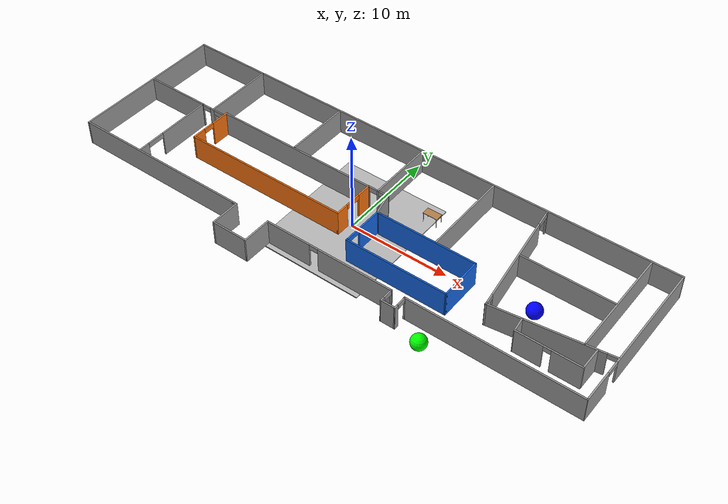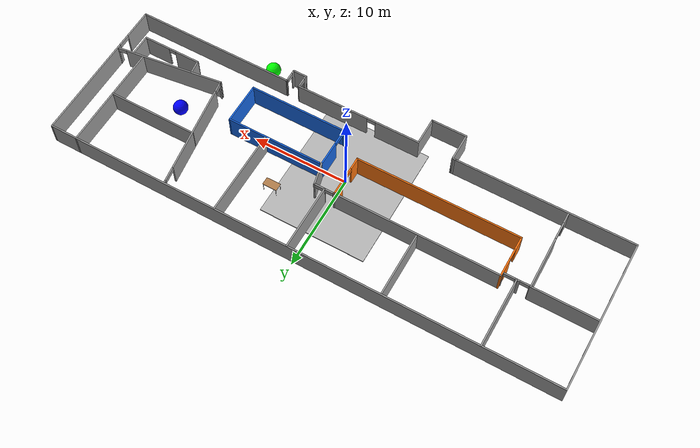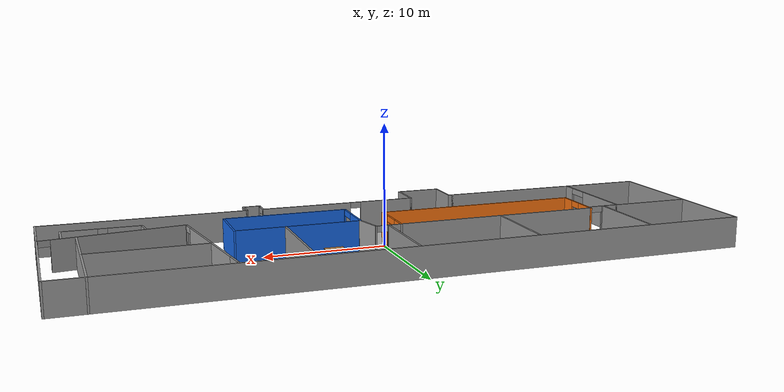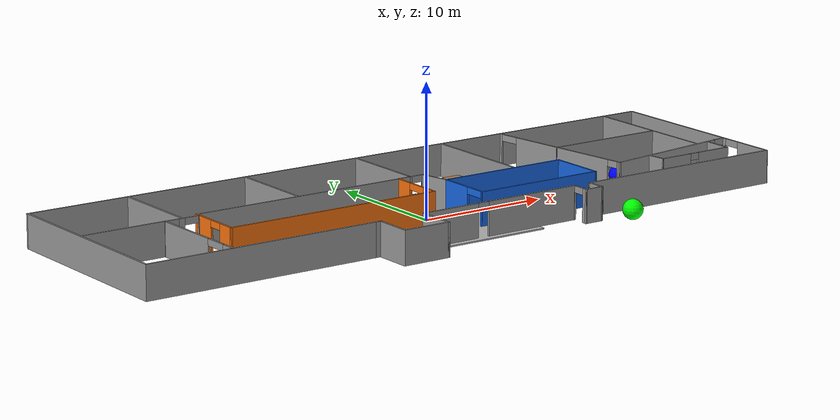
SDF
<sdf version="1.4">
 <world name="default">
  <scene><ambient>0.8 0.8 0.8 1</ambient><background>0.7 0.7 0.7 1</background><shadows>true</shadows></scene>
  <include><uri>model://sun</uri><pose>-2.0 2.0 2.0 0 0 0</pose></include>
  <include><uri>model://quarto_andar/pisosala</uri></include>
  <include>
   <uri>model://quarto_andar/esferas/bola_verde</uri>
   <pose>12.598763 -7.618453 0.500000 0 -0 0</pose>
  </include>
  <include>
   <uri>model://quarto_andar/esferas/bola_azul</uri>
   <pose>18.141525 0.793486 0.500000 0 -0 0</pose>
  </include>
  <include><uri>model://quarto_andar/mesa</uri><pose>5.5 4.3 0.4 0 0 0</pose></include>
  <include><uri>model://quarto_andar</uri></include>
  <physics type="ode">
   <real_time_update_rate>1000.0</real_time_update_rate>
   <max_step_size>0.001</max_step_size>
   <real_time_factor>1</real_time_factor>
   <ode>
    <solver>
     <type>quick</type>
     <iters>150</iters>
     <precon_iters>0</precon_iters>
     <sor>1.400000</sor>
     <use_dynamic_moi_rescaling>1</use_dynamic_moi_rescaling>
    </solver>
    <constraints>
     <cfm>0.00001</cfm>
     <erp>0.2</erp>
     <contact_max_correcting_vel>2000.000000</contact_max_correcting_vel>
     <contact_surface_layer>0.01000</contact_surface_layer>
    </constraints>
   </ode>
  </physics>
 </world>
</sdf>

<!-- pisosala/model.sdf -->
<sdf version="1.6">
  <model name="pisosala_forca">
    <static>true</static>
    <link name="course_link">
      <collision name="course_collision">
        <geometry>
          <plane>
            <normal>0 0 1</normal>
            <size>10 13</size>
          </plane>
        </geometry>
        <surface>
          <friction>
            <ode>
              <mu>100</mu>
              <mu2>50</mu2>
            </ode>
          </friction>
        </surface>
      </collision>
      <visual name="course_visual">
        <cast_shadows>false</cast_shadows>
        <geometry>
          <mesh>
            <uri>model://forca/pisosala/materials/scripts/piso.dae</uri>
            <scale>1 1 1</scale>
          </mesh>
        </geometry>
      </visual>
    </link>
  </model>
</sdf>

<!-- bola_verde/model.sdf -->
<sdf version='1.6'>
  <model name='bola_azul'>
    <link name='link'>
      <inertial>
        <mass>1</mass>
        <inertia>
          <ixx>0.1</ixx>
          <ixy>0</ixy>
          <ixz>0</ixz>
          <iyy>0.1</iyy>
          <iyz>0</iyz>
          <izz>0.1</izz>
        </inertia>
        <pose frame=''>0 0 0 0 -0 0</pose>
      </inertial>
      <self_collide>0</self_collide>
      <enable_wind>0</enable_wind>
      <kinematic>0</kinematic>
      <pose frame=''>0 0 0 0 -0 0</pose>
      <gravity>1</gravity>
      <visual name='visual'>
        <geometry>
          <sphere>
            <radius>0.75</radius>
          </sphere>
        </geometry>
        <material>
          <script>
            <name>Gazebo/Grey</name>
            <uri>file://media/materials/scripts/gazebo.material</uri>
          </script>
          <shader type='vertex'>
            <normal_map>__default__</normal_map>
          </shader>
          <ambient>0 1 0 1</ambient>
          <diffuse>0 1 0 1</diffuse>
          <specular>0 1 0 1</specular>
          <emissive>0 0 0 1</emissive>
        </material>
        <pose frame=''>0 0 0 0 -0 0</pose>
        <transparency>0</transparency>
        <cast_shadows>1</cast_shadows>
      </visual>
      <collision name='collision'>
        <laser_retro>0</laser_retro>
        <max_contacts>10</max_contacts>
        <pose frame=''>0 0 0 0 -0 0</pose>
        <geometry>
          <sphere>
            <radius>0.75</radius>
          </sphere>
        </geometry>
        <surface>
          <friction>
            <ode>
              <mu>1</mu>
              <mu2>1</mu2>
              <fdir1>0 0 0</fdir1>
              <slip1>0</slip1>
              <slip2>0</slip2>
            </ode>
            <torsional>
              <coefficient>1</coefficient>
              <patch_radius>0</patch_radius>
              <surface_radius>0</surface_radius>
              <use_patch_radius>1</use_patch_radius>
              <ode>
                <slip>0</slip>
              </ode>
            </torsional>
          </friction>
          <bounce>
            <restitution_coefficient>0</restitution_coefficient>
            <threshold>1e+06</threshold>
          </bounce>
          <contact>
            <collide_without_contact>0</collide_without_contact>
            <collide_without_contact_bitmask>1</collide_without_contact_bitmask>
            <collide_bitmask>1</collide_bitmask>
            <ode>
              <soft_cfm>0</soft_cfm>
              <soft_erp>0.2</soft_erp>
              <kp>1e+13</kp>
              <kd>1</kd>
              <max_vel>0.01</max_vel>
              <min_depth>0</min_depth>
            </ode>
            <bullet>
              <split_impulse>1</split_impulse>
              <split_impulse_penetration_threshold>-0.01</split_impulse_penetration_threshold>
              <soft_cfm>0</soft_cfm>
              <soft_erp>0.2</soft_erp>
              <kp>1e+13</kp>
              <kd>1</kd>
            </bullet>
          </contact>
        </surface>
      </collision>
    </link>
    <static>0</static>
    <allow_auto_disable>1</allow_auto_disable>
  </model>
</sdf>

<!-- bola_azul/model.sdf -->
<sdf version='1.6'>
  <model name='bola_azul'>
    <link name='link'>
      <inertial>
        <mass>1</mass>
        <inertia>
          <ixx>0.1</ixx>
          <ixy>0</ixy>
          <ixz>0</ixz>
          <iyy>0.1</iyy>
          <iyz>0</iyz>
          <izz>0.1</izz>
        </inertia>
        <pose frame=''>0 0 0 0 -0 0</pose>
      </inertial>
      <self_collide>0</self_collide>
      <enable_wind>0</enable_wind>
      <kinematic>0</kinematic>
      <pose frame=''>0 0 0 0 -0 0</pose>
      <gravity>1</gravity>
      <visual name='visual'>
        <geometry>
          <sphere>
            <radius>0.75</radius>
          </sphere>
        </geometry>
        <material>
          <script>
            <name>Gazebo/Grey</name>
            <uri>file://media/materials/scripts/gazebo.material</uri>
          </script>
          <shader type='vertex'>
            <normal_map>__default__</normal_map>
          </shader>
          <ambient>0 0 1 1</ambient>
          <diffuse>0 0 1 1</diffuse>
          <specular>0 0 1 1</specular>
          <emissive>0 0 0 1</emissive>
        </material>
        <pose frame=''>0 0 0 0 -0 0</pose>
        <transparency>0</transparency>
        <cast_shadows>1</cast_shadows>
      </visual>
      <collision name='collision'>
        <laser_retro>0</laser_retro>
        <max_contacts>10</max_contacts>
        <pose frame=''>0 0 0 0 -0 0</pose>
        <geometry>
          <sphere>
            <radius>0.75</radius>
          </sphere>
        </geometry>
        <surface>
          <friction>
            <ode>
              <mu>1</mu>
              <mu2>1</mu2>
              <fdir1>0 0 0</fdir1>
              <slip1>0</slip1>
              <slip2>0</slip2>
            </ode>
            <torsional>
              <coefficient>1</coefficient>
              <patch_radius>0</patch_radius>
              <surface_radius>0</surface_radius>
              <use_patch_radius>1</use_patch_radius>
              <ode>
                <slip>0</slip>
              </ode>
            </torsional>
          </friction>
          <bounce>
            <restitution_coefficient>0</restitution_coefficient>
            <threshold>1e+06</threshold>
          </bounce>
          <contact>
            <collide_without_contact>0</collide_without_contact>
            <collide_without_contact_bitmask>1</collide_without_contact_bitmask>
            <collide_bitmask>1</collide_bitmask>
            <ode>
              <soft_cfm>0</soft_cfm>
              <soft_erp>0.2</soft_erp>
              <kp>1e+13</kp>
              <kd>1</kd>
              <max_vel>0.01</max_vel>
              <min_depth>0</min_depth>
            </ode>
            <bullet>
              <split_impulse>1</split_impulse>
              <split_impulse_penetration_threshold>-0.01</split_impulse_penetration_threshold>
              <soft_cfm>0</soft_cfm>
              <soft_erp>0.2</soft_erp>
              <kp>1e+13</kp>
              <kd>1</kd>
            </bullet>
          </contact>
        </surface>
      </collision>
    </link>
    <static>0</static>
    <allow_auto_disable>1</allow_auto_disable>
  </model>
</sdf>

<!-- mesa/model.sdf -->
<sdf version='1.6'>
  <model name='lab404'>
    <model name='table'>
      <static>1</static>
      <link name='link'>
        <collision name='surface'>
          <pose frame=''>0 0 1 0 -0 0</pose>
          <geometry>
            <box>
              <size>1.5 0.8 0.03</size>
            </box>
          </geometry>
          <surface>
            <friction>
              <ode>
                <mu>0.6</mu>
                <mu2>0.6</mu2>
              </ode>
            </friction>
          </surface>
        </collision>
        <visual name='visual1'>
          <pose frame=''>0 0 1 0 -0 0</pose>
          <geometry>
            <box>
              <size>1.5 0.8 0.03</size>
            </box>
          </geometry>
          <material>
            <script>
              <uri>file://media/materials/scripts/gazebo.material</uri>
              <name>Gazebo/Wood</name>
            </script>
          </material>
        </visual>
        <collision name='front_left_leg'>
          <pose frame=''>0.68 0.38 0.5 0 -0 0</pose>
          <geometry>
            <cylinder>
              <radius>0.02</radius>
              <length>1</length>
            </cylinder>
          </geometry>
        </collision>
        <visual name='front_left_leg'>
          <pose frame=''>0.68 0.38 0.5 0 -0 0</pose>
          <geometry>
            <cylinder>
              <radius>0.02</radius>
              <length>1</length>
            </cylinder>
          </geometry>
          <material>
            <script>
              <uri>file://media/materials/scripts/gazebo.material</uri>
              <name>Gazebo/Grey</name>
            </script>
          </material>
        </visual>
        <collision name='front_right_leg'>
          <pose frame=''>0.68 -0.38 0.5 0 -0 0</pose>
          <geometry>
            <cylinder>
              <radius>0.02</radius>
              <length>1</length>
            </cylinder>
          </geometry>
        </collision>
        <visual name='front_right_leg'>
          <pose frame=''>0.68 -0.38 0.5 0 -0 0</pose>
          <geometry>
            <cylinder>
              <radius>0.02</radius>
              <length>1</length>
            </cylinder>
          </geometry>
          <material>
            <script>
              <uri>file://media/materials/scripts/gazebo.material</uri>
              <name>Gazebo/Grey</name>
            </script>
          </material>
        </visual>
        <collision name='back_right_leg'>
          <pose frame=''>-0.68 -0.38 0.5 0 -0 0</pose>
          <geometry>
            <cylinder>
              <radius>0.02</radius>
              <length>1</length>
            </cylinder>
          </geometry>
        </collision>
        <visual name='back_right_leg'>
          <pose frame=''>-0.68 -0.38 0.5 0 -0 0</pose>
          <geometry>
            <cylinder>
              <radius>0.02</radius>
              <length>1</length>
            </cylinder>
          </geometry>
          <material>
            <script>
              <uri>file://media/materials/scripts/gazebo.material</uri>
              <name>Gazebo/Grey</name>
            </script>
          </material>
        </visual>
        <collision name='back_left_leg'>
          <pose frame=''>-0.68 0.38 0.5 0 -0 0</pose>
          <geometry>
            <cylinder>
              <radius>0.02</radius>
              <length>1</length>
            </cylinder>
          </geometry>
        </collision>
        <visual name='back_left_leg'>
          <pose frame=''>-0.68 0.38 0.5 0 -0 0</pose>
          <geometry>
            <cylinder>
              <radius>0.02</radius>
              <length>1</length>
            </cylinder>
          </geometry>
          <material>
            <script>
              <uri>file://media/materials/scripts/gazebo.material</uri>
              <name>Gazebo/Grey</name>
            </script>
          </material>
        </visual>
      </link>
      <pose frame=''>0 -0 0 0 -0 0</pose>
    </model>
    <static>0</static>
    <allow_auto_disable>1</allow_auto_disable>
  </model>
</sdf>
